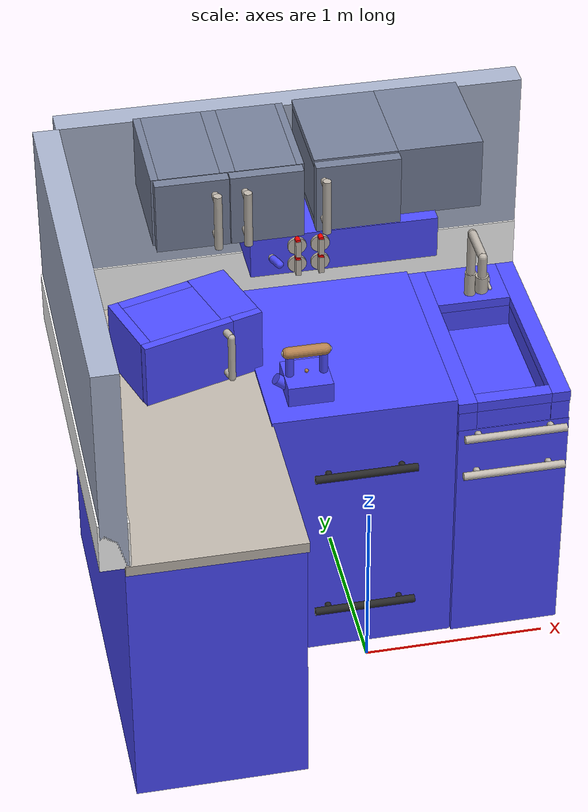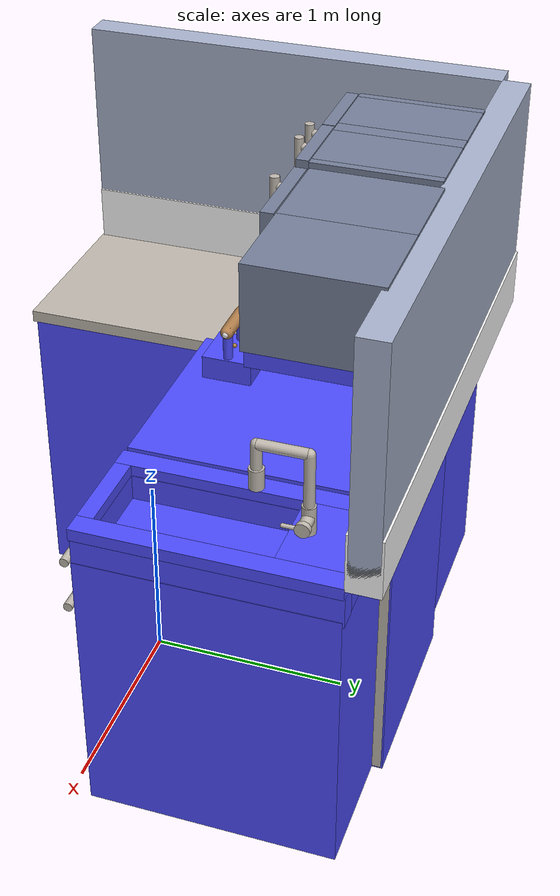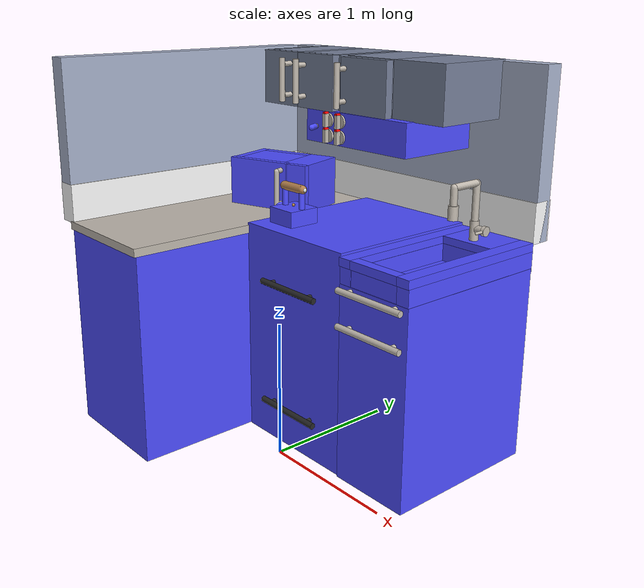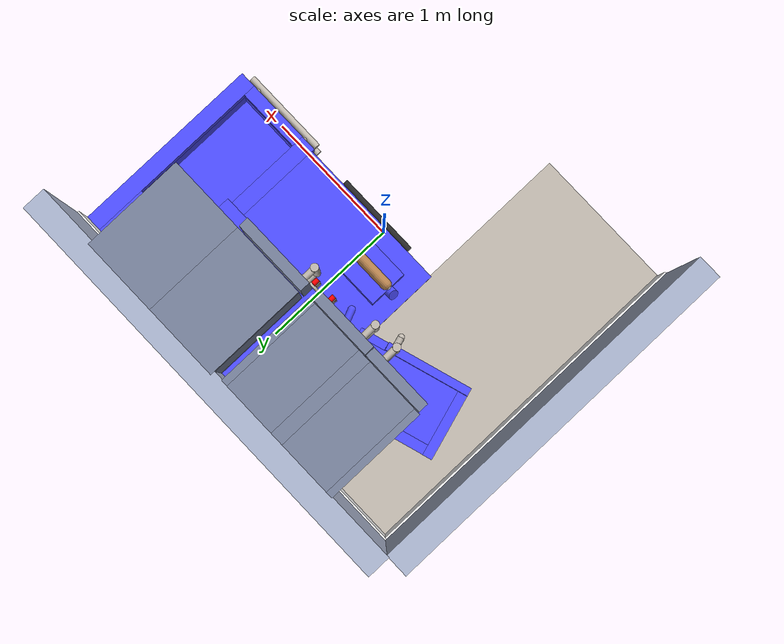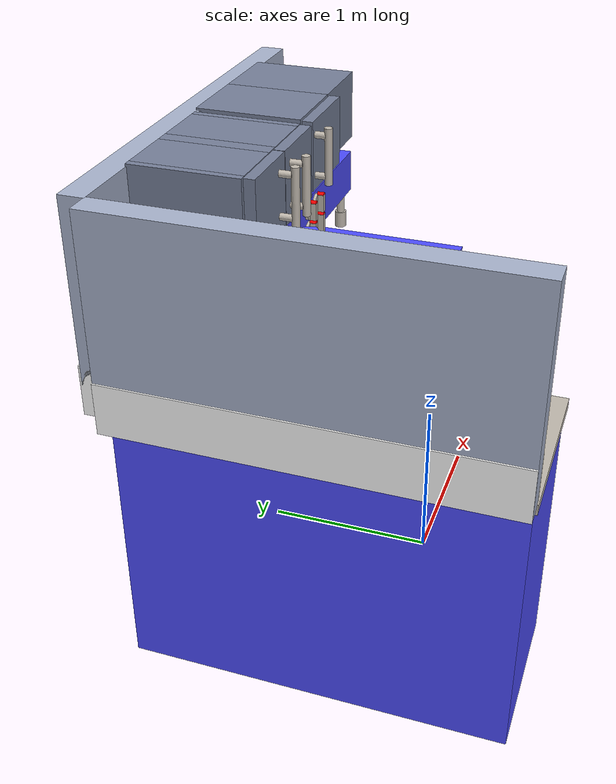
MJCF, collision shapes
<!--Copyright 2020 Google LLC-->

<!--Licensed under the Apache License, Version 2.0 (the "License");-->
<!--you may not use this file except in compliance with the License.-->
<!--You may obtain a copy of the License at-->

    <!--https://www.apache.org/licenses/LICENSE-2.0-->

<!--Unless required by applicable law or agreed to in writing, software-->
<!--distributed under the License is distributed on an "AS IS" BASIS,-->
<!--WITHOUT WARRANTIES OR CONDITIONS OF ANY KIND, either express or implied.-->
<!--See the License for the specific language governing permissions and-->
<!--limitations under the License.-->

<mujoco model="franka_kitchen">

    <size njmax='1000' nconmax='1000'/>

    <compiler inertiafromgeom="auto" inertiagrouprange="4 4" angle="radian"/>
    <asset>
        <mesh file="hood.stl" name="hood"/>
        <mesh file="lightswitch.stl" name="lightswitch"/>
        <mesh file="lightswitchbase.stl" name="lightswitchbase"/>
        <mesh file="knob.stl" name="knob"/>
        <mesh file="stoverim.stl" name="stoverim"/>
        <mesh file="burnerplate.stl" name="burnerplate"/>
        <mesh file="ovenhandle.stl" name="ovenhandle"/>
        <mesh file="oven.stl" name="oven"/>
        <mesh file="oventop.stl" name="oventop"/>
        <mesh file="ovenwindow.stl" name="ovenwindow"/>
        <texture name="T_oven_wood" type="cube" height="1" width="1" file="wood1.png"/>
        <texture name="T_oven_metal" type="cube" height="1" width="1" file="metal1.png"/>
        <material name="oven_wood" texture="T_oven_wood" texrepeat="3 3" reflectance="0.7" shininess=".4" texuniform="false"/>
        <material name="oven_metal" rgba="1 1 1 1" texture="T_oven_metal" texrepeat="3 3" reflectance="1" shininess="1" texuniform="false"/>
        <material name="oven_black" rgba=".15 .15 .15 1" reflectance=".2" shininess=".2" />
        <material name="oven_burner" rgba="2 0 0 1" reflectance=".2" shininess=".2" />
        <material name="oven_block" rgba=".1 .1 .1 1"/>
        <material name="oven_collision_blue" rgba="0.3 0.3 1.0 0.5" shininess="0" specular="0"/>
    </asset>
    <default>
        <default class="oven">
            <joint armature="0.001" damping="2" limited="true"/>
            <geom conaffinity="0" contype="0" group="1" material="oven_metal" type="mesh"/>
            <default class="ovenlight" >
                <light directional="false" castshadow="true" attenuation="0.03 0.03 0.03" cutoff="100" exponent="25" diffuse=".7 .65 .65" specular=".3 .3 .3"/>
            </default>
            <default class="oven_collision">
                <geom conaffinity="1" condim="3" contype="0" group="4" margin="0.001" material="oven_collision_blue" type="mesh"/>
            </default>
        </default>
    </default>
    <equality>
        <joint polycoef="0 174 0 0 0" joint1="knob_Joint_1" joint2="bottom_right_burner"/>
        <joint polycoef="0 174 0 0 0" joint1="knob_Joint_2" joint2="bottom_left_burner"/>
        <joint polycoef="0 174 0 0 0" joint1="knob_Joint_3" joint2="top_right_burner"/>
        <joint polycoef="0 174 0 0 0" joint1="knob_Joint_4" joint2="top_left_burner"/>
        <joint polycoef="0 14 0 0 0" joint1="light_switch" joint2="light_joint"/>
    </equality>

    <compiler inertiafromgeom="auto" inertiagrouprange="4 4" angle="radian"/>
    <asset>
        <mesh file="cabinetdrawer.stl" name="cabinetdrawer"/>
        <mesh file="cabinethandle.stl" name="cabinethandle"/>
        <mesh file="cabinetbase.stl" name="cabinetbase"/>
        <mesh file="countertop.stl" name="countertop"/>
        <mesh file="faucet.stl" name="faucet"/>
        <texture name="T_counter_metal" type="cube" height="1" width="1" file="metal1.png" />
        <texture name="T_counter_marble" type="cube" height="1" width="1" file="marble1.png" />
        <material name="counter_metal" rgba="1 1 1 1" texture="T_counter_metal" texrepeat="3 3" reflectance=".5" shininess="1" texuniform="false" />
        <material name="counter_marble"  texture="T_counter_marble" texrepeat="1 1" reflectance=".2" shininess="1" texuniform="false" />
        <material name="counter_black" rgba=".2 .2 .2 1" reflectance="1" shininess="1"  />
        <material name="counter_blue" rgba=".46 .5 .6 1" reflectance="1" shininess="1"  />
        <material name="counter_collision_blue" rgba="0.3 0.3 1.0 0.5" shininess="0" specular="0" />
    </asset>
    <default>
        <default class="counters">
            <joint damping="2" frictionloss="2" armature=".01" limited="true"/>
            <geom conaffinity="0" contype="0" group="1" material="counter_metal" type="mesh"/>
            <default class="counter_collision">
                <geom conaffinity="1" condim="3" contype="0" group="4" margin="0.001" material="counter_collision_blue"/>
            </default>
        </default>
    </default>

    <compiler inertiafromgeom="auto" inertiagrouprange="4 4" angle="radian"/>
    <asset>
        <texture name="T_wall_marble" type="cube" height="1" width="1" file="marble1.png"/>
        <texture name="T_wall_metal" type="cube" height="1" width="1" file="metal1.png"/>
        <material name="wall_white" rgba="1 1 1 1" reflectance="0" shininess="0"/>
        <material name="wall_blue" rgba=".66 .7 .8 1" reflectance="0" shininess="0"/>
        <material name="wall_collision_blue" rgba="0.3 0.3 1.0 0.5" shininess="0" specular="0"/>
    </asset>
    <default>
        <default class="backwall">
            <geom conaffinity="0" contype="0" group="1" material="wall_blue"/>
            <default class="wall_collision">
                <geom conaffinity="1" condim="3" contype="0" group="4" margin="0.001" material="wall_collision_blue"/>
            </default>
        </default>
    </default>

    <compiler inertiafromgeom="auto" inertiagrouprange="4 4" angle="radian"/>
    <asset>
        <texture name="T_slide_metal" type="cube" height="1" width="1" file="metal1.png"/>
        <material name="M_slide_metal" texture="T_slide_metal" texrepeat="3 3" reflectance="0.7" shininess=".4" texuniform="false"/>
        <material name="M_slide_blue" rgba=".46 .5 .6 1" reflectance="0.7" shininess=".4"/>
        <material name="slide_collision_blue" rgba="0.3 0.3 1.0 0.5" shininess="0" specular="0"/>
    </asset>
    <default>
        <default class="slidecabinet">
            <joint damping="2" frictionloss="2" armature=".01" limited="true"/>
            <geom conaffinity="0" contype="0" group="1" material="M_slide_blue" type="mesh"/>
            <default class="slide_collision">
                <geom conaffinity="1" condim="3" contype="0" group="4" margin="0.001" material="slide_collision_blue"/>
            </default>
        </default>
    </default>

    <compiler inertiafromgeom="auto" inertiagrouprange="4 4" angle="radian"/>
    <asset>
        <texture name="T_hinge_wood" type="cube" height="1" width="1" file="wood1.png"/>
        <texture name="T_hinge_metal" type="cube" height="1" width="1" file="metal1.png"/>
        <material name="M_hinge_wood" texture="T_hinge_wood" texrepeat="3 3" reflectance="0.7" shininess=".4" texuniform="false"/>
        <material name="M_hinge_metal" texture="T_hinge_metal" texrepeat="3 3" reflectance="0.7" shininess=".4" texuniform="false"/>
        <material name="M_hinge_blue" rgba=".46 .5 .6 1" reflectance="0.7" shininess=".4"/>
        <material name="hinge_collision_blue" rgba="0.3 0.3 1.0 0.5" shininess="0" specular="0"/>
    </asset>
    <default>
        <default class="hingecabinet">
            <joint damping="2" frictionloss="2" armature=".01" limited="true"/>
            <geom conaffinity="0" contype="0" group="1" material="M_hinge_wood" type="mesh"/>
            <default class="hinge_collision">
                <geom conaffinity="1" condim="3" contype="0" group="4" margin="0.001" material="hinge_collision_blue" solimp=".8 .9 .01" solref=".02 1"/>
            </default>
        </default>
    </default>

    <compiler inertiafromgeom="auto" inertiagrouprange="4 4" angle="radian"/>
    <asset>
        <mesh file="micro.stl" name="micro"/>
        <mesh file="microdoor.stl" name="microdoor"/>
        <mesh file="microbutton.stl" name="microbutton"/>
        <mesh file="microfeet.stl" name="microfeet"/>
        <mesh file="microhandle.stl" name="microhandle"/>
        <mesh file="microwindow.stl" name="microwindow"/>
        <texture name="T_micro_metal" type="cube" height="1" width="1" file="metal1.png"/>
        <material name="micro_metal" rgba="1 1 1 1" texture="T_micro_metal" texrepeat="3 3" reflectance="1" shininess="1" texuniform="false"/>
        <material name="micro_black" rgba=".2 .2 .2 1" reflectance="1" shininess="1"/>
        <material name="micro_window" rgba=".4 .4 .4 .25" reflectance="1" shininess="1"/>
        <material name="micro_collision_blue" rgba="0.3 0.3 1.0 0.5" shininess="0" specular="0"/>
    </asset>
    <default>
        <default class="microwave">
            <joint damping="2" frictionloss="2" armature=".01" limited="true"/>
            <geom conaffinity="0" contype="0" group="1" material="micro_black" type="mesh"/>
            <default class="micro_collision">
                <geom conaffinity="1" condim="3" contype="0" group="4" margin="0.001" material="micro_collision_blue" solimp=".8 .9 .01" solref=".02 1"/>
            </default>
        </default>
    </default>

    <compiler inertiafromgeom="auto" inertiagrouprange="4 4" angle="radian"/>
    <asset>
        <mesh file="kettle.stl" name="kettle"/>
        <mesh file="kettlehandle.stl" name="kettlehandle"/>
        <texture name="T_kettle_metal" type="cube" height="1" width="1" file="metal1.png" />
        <texture name="T_kettle_wood" type="cube" height="1" width="1" file="wood1.png" />
        <material name="kettle_wood" rgba="1 1 1 1" texture="T_kettle_wood" texrepeat="3 3" reflectance="1" shininess="1" texuniform="false" />
        <material name="kettle_metal" rgba="1 1 1 1" texture="T_kettle_metal" texrepeat="3 3" reflectance="1" shininess="1" texuniform="false" />
        <material name="kettle_white" rgba=".9 .9 .9 1" reflectance="1" shininess="1" />
        <material name="kettle_collision_blue" rgba="0.3 0.3 1.0 0.5" shininess="0" specular="0" />
    </asset>
    <default class="kettle">
        <joint damping="2" frictionloss="2" armature=".01" limited="true" />
        <geom conaffinity="0" contype="0" group="1" material="kettle_white" type="mesh"/>
        <default class="kettle_collision">
            <geom conaffinity="1" condim="4" contype="1" group="4" margin="0.001" material="kettle_collision_blue" solimp=".8 .9 .01" solref=".02 1" type="mesh"/>
        </default>
    </default>

    <visual>
    <global offwidth="2560" offheight="1920" />
    <quality shadowsize="4096" offsamples="8" />
    <map force="0.1" fogend="5" />
    </visual>

    <compiler inertiafromgeom='auto' inertiagrouprange='3 5' angle="radian" texturedir="./textures/" meshdir="./meshes/"/>
    <worldbody>

        <!-- Robot -->

        <body name='desk' pos='-0.1 0.75 0'>
            <body name="counters1" pos="0 0 0" >
                <body name="counters" childclass="counters">
                    <geom material="counter_blue" mesh="cabinetbase" type="mesh"/>
                    <geom material="counter_marble" mesh="countertop" type="mesh"/>
                    <geom material="counter_marble" pos="-0.855 -0.508 1.57" size="0.463 1.08 0.03" type="box"/>
                    <geom mesh="faucet" pos="0.904 -0.172 1.511" type="mesh"/>
                    <geom pos="0.9 0.085 1.83" size="0.035 0.05" type="cylinder"/>
                    <geom pos="0.9 0.085 1.92" size="0.025 0.08" type="capsule"/>
                    <geom euler="1.57 0 0" pos="0.9 0.2 2" size="0.025 0.11" type="capsule"/>
                    <geom pos="0.9 0.317 1.8" size="0.025 0.2" type="capsule"/>
                    <geom pos="0.9 0.317 1.67" size="0.032 0.07" type="cylinder"/>
                    <geom pos="0.947 0.318 1.68" euler="0 1.57 0" size="0.029 0.03" type="cylinder"/>
                    <geom pos="0.99 0.318 1.68" euler="0 1.57 0" size="0.035 0.013 " type="cylinder"/>
                    <geom euler="1.57 0 0" pos="0.99 0.26 1.68" size="0.01 0.03" type="capsule"/>
                    <geom euler="0 1.57 0" pos="0.909 -0.695 1.39" size="0.022 0.28" type="cylinder"/>
                    <geom euler="1.57 0 0" pos="0.71 -0.665 1.39" size="0.018 0.03" type="cylinder"/>
                    <geom euler="1.57 0 0" pos="1.108 -0.665 1.39" size="0.018 0.03" type="cylinder"/>
                    <geom euler="0 1.57 0" pos="0.909 -0.695 1.14" size="0.022 0.28" type="cylinder"/>
                    <geom euler="1.57 0 0" pos="0.71 -0.665 1.14" size="0.018 0.03" type="cylinder"/>
                    <geom euler="1.57 0 0" pos="1.108 -0.665 1.14" size="0.018 0.03" type="cylinder"/>
                    <geom class="counter_collision" euler="0 1.57 0" pos="0.909 -0.695 1.39" size="0.022 0.28" type="cylinder" mass=".1"/>
                    <geom class="counter_collision" euler="1.57 0 0" pos="0.71 -0.665 1.39" size="0.018 0.03" type="cylinder" mass=".02"/>
                    <geom class="counter_collision" euler="1.57 0 0" pos="1.108 -0.665 1.39" size="0.018 0.03" type="cylinder" mass=".02"/>
                    <geom class="counter_collision" euler="0 1.57 0" pos="0.909 -0.695 1.14" size="0.022 0.28" type="cylinder" mass=".1"/>
                    <geom class="counter_collision" euler="1.57 0 0" pos="0.71 -0.665 1.14" size="0.018 0.03" type="cylinder" mass=".02"/>
                    <geom class="counter_collision" euler="1.57 0 0" pos="1.108 -0.665 1.14" size="0.018 0.03" type="cylinder" mass=".02"/>
                    <geom class="counter_collision" pos="-0.86 -0.5 0.78" size="0.46 1.07 0.777" type="box" mass="5"/>
                    <geom class="counter_collision" pos="0.907 -0.045 0.71" size="0.304 0.606 0.71" type="box" mass="3"/>
                    <geom class="counter_collision" pos="-0.855 -0.508 1.57" size="0.463 1.08 0.03" type="box" mass=".5"/>
                    <geom class="counter_collision" pos="1.159 -0.045 1.57" size="0.051 0.611 0.03" type="box" mass=".2"/>
                    <geom class="counter_collision" pos="0.649 -0.045 1.57" size="0.051 0.611 0.03" type="box" mass=".2"/>
                    <geom class="counter_collision" pos="0.904 0.4 1.57" size="0.204 0.165 0.03" type="box" mass=".2"/>
                    <geom class="counter_collision" pos="0.904 -0.617 1.57" size="0.204 0.039 0.03" type="box" mass=".2"/>
                    <geom class="counter_collision" pos="1.158 -0.04 1.47" size="0.05 0.61 0.076" type="box" mass=".2"/>
                    <geom class="counter_collision" pos="0.652 -0.04 1.47" size="0.05 0.61 0.076" type="box" mass=".2"/>
                    <geom class="counter_collision" pos="0.904 0.401 1.47" size="0.204 0.166 0.076" type="box" mass=".2"/>
                    <geom class="counter_collision" pos="0.904 -0.611 1.47" size="0.206 0.034 0.076" type="box" mass=".2"/>
                    <geom class="counter_collision" pos="0.9 0.085 1.83" size="0.035 0.05" type="cylinder" mass=".02"/>
                    <geom class="counter_collision" pos="0.9 0.085 1.92" size="0.025 0.08" type="capsule" mass=".02"/>
                    <geom class="counter_collision" euler="1.57 0 0" pos="0.9 0.2 2" size="0.025 0.11" type="capsule" mass=".02"/>
                    <geom class="counter_collision" pos="0.9 0.317 1.8" size="0.025 0.2" type="capsule" mass=".02"/>
                    <geom class="counter_collision" pos="0.9 0.317 1.67" size="0.032 0.07" type="cylinder" mass=".02"/>
                    <geom class="counter_collision" pos="0.947 0.318 1.68" euler="0 1.57 0" size="0.029 0.03" type="cylinder" mass=".02"/>
                    <geom class="counter_collision" pos="0.99 0.318 1.68" euler="0 1.57 0" size="0.035 0.013 " type="cylinder" mass=".02"/>
                    <geom class="counter_collision" euler="1.57 0 0" pos="0.99 0.26 1.68" size="0.01 0.03" type="capsule" mass=".02"/>
                </body>
            </body>
            <body name="oven" pos="0 0 0" >
                <body name="ovenroot" childclass="oven" pos="0.115 -0.2921 0.9834">
                    <geom material="oven_black" mesh="burnerplate" pos="-0.24 -0.119 0.629" type="mesh"/>
                    <geom material="oven_black" mesh="burnerplate" pos="-0.237 0.322 0.629" type="mesh"/>
                    <geom material="oven_black" mesh="burnerplate" pos="0.204 0.322 0.629" type="mesh"/>
                    <geom material="oven_black" mesh="burnerplate" pos="0.206 -0.119 0.629" type="mesh"/>
                    <geom material="oven_black" euler="1.57 0 0" pos="-.215 -0.36 -0.682" size="0.018 0.03" type="cylinder"/>
                    <geom material="oven_black" euler="1.57 0 0" pos=".184 -0.36 -0.682" size="0.018 0.03" type="cylinder"/>
                    <geom material="oven_black" euler="0 1.57 0" pos="-0.015 -0.39 -0.682" size="0.022 0.28" type="cylinder"/>
                    <geom material="oven_black" euler="1.57 0 0" pos="-.215 -0.36 0.254" size="0.018 0.03" type="cylinder"/>
                    <geom material="oven_black" euler="1.57 0 0" pos=".184 -0.36 0.254" size="0.018 0.03" type="cylinder"/>
                    <geom material="oven_black" euler="0 1.57 0" pos="-0.015 -0.39 0.254" size="0.022 0.28" type="cylinder"/>
                    <geom material="oven_black" mesh="oventop" pos="-0.017 0.275 0.607" type="mesh"/>
                    <geom material="oven_black" mesh="ovenwindow" pos="0.9793 0.2921 -1.1877" type="mesh"/>
                    <geom material="oven_black" pos="-0.011 -.327 -.05" size="0.35 0.016 0.22" type="box"/>
                    <geom mesh="stoverim" pos="0.203 0.323 0.619" type="mesh"/>
                    <geom mesh="stoverim" pos="-0.24 -0.12 0.619" type="mesh"/>
                    <geom mesh="stoverim" pos="-0.237 0.323 0.619" type="mesh"/>
                    <geom mesh="stoverim" pos="0.207 -0.12 0.619" type="mesh"/>
                    <geom pos="-0.017 -.326 .455" size="0.5 0.016 0.12" type="box"/>
                    <geom pos="-0.017 -.326 -.795" size="0.5 0.016 0.185" type="box"/>
                    <geom pos="-0.017 -.326 -.14" size="0.5 0.016 0.465" type="box"/>
                    <geom pos="-0.017 0.295 -0.2" size="0.5 0.602 0.78" type="box"/>
                    <geom class="oven_collision" pos="-0.017 0.28 -0.175" size="0.5 0.625 0.81" type="box" mass="5"/>
                    <geom class="oven_collision" euler="1.57 0 0" pos="-.215 -0.36 -0.682" size="0.018 0.03" type="cylinder" mass=".2"/>
                    <geom class="oven_collision" euler="1.57 0 0" pos=".184 -0.36 -0.682" size="0.018 0.03" type="cylinder" mass=".2"/>
                    <geom class="oven_collision" euler="0 1.57 0" pos="-0.015 -0.39 -0.682" size="0.022 0.28" type="cylinder" mass=".2"/>
                    <geom class="oven_collision" euler="1.57 0 0" pos="-.215 -0.36 0.254" size="0.018 0.03" type="cylinder" mass=".2"/>
                    <geom class="oven_collision" euler="1.57 0 0" pos=".184 -0.36 0.254" size="0.018 0.03" type="cylinder" mass=".2"/>
                    <geom class="oven_collision" euler="0 1.57 0" pos="-0.015 -0.39 0.254" size="0.022 0.28" type="cylinder" mass=".2"/>
                    <body name="knob 1" euler="1.57 0 0" pos="-0.148 0.22 1.243">
                        <joint name="knob_Joint_1" axis="0 0 1" type="hinge" limited="true" range="-1.57 0"/>
                        <geom type="box" pos="0 0 .038" size=".014 .048 .018"/>
                        <geom type="cylinder" pos="0 0 .013" size=".05 .008"/>
                        <geom type="cylinder" pos="0 0.048 .037" size=".014 .018" rgba="1 0 0 1"/>
                        <geom class="oven_collision" type="box" pos="0 0 .038" size=".014 .048 .018" mass=".01"/>
                        <geom class="oven_collision" type="cylinder" pos="0 0 .013" size=".05 .008" mass=".01"/>
                        <site type="sphere" name="knob1_site" pos="0 0 .038" size=".01" group="3" rgba="1 1 0 1"/>
                    </body>
                    <body name="Burner 1" pos="0.206 -0.119 0.61">
                        <inertial pos="0 0 0" mass=".01" diaginertia="0.001 0.001 0.001"/>
                        <joint name="bottom_right_burner" axis="0 0 -1" type="slide" limited="true" range="-.009 0"/>
                        <geom material="oven_burner" size="0.1 0.01" type="cylinder"/>
                    </body>
                    <body name="knob 2" euler="1.57 0 0" pos="-0.271 0.22 1.243">
                        <joint name="knob_Joint_2" axis="0 0 1" type="hinge" limited="true" range="-1.57 0"/>
                        <geom type="box" pos="0 0 .038" size=".014 .048 .018"/>
                        <geom type="cylinder" pos="0 0 .013" size=".05 .008"/>
                        <geom type="cylinder" pos="0 0.048 .037" size=".014 .018" rgba="1 0 0 1"/>
                        <geom class="oven_collision" type="box" pos="0 0 .038" size=".014 .048 .018" mass=".01"/>
                        <geom class="oven_collision" type="cylinder" pos="0 0 .013" size=".05 .008" mass=".01"/>
                        <site type="sphere" name="knob2_site" pos="0 0 .038" size=".01" group="3" rgba="0 0 1 1"/>
                    </body>
                    <body name="Burner 2" pos="-0.24 -0.119 0.61">
                        <inertial pos="0 0 0" mass=".01" diaginertia="0.001 0.001 0.001"/>
                        <joint name="bottom_left_burner" axis="0 0 -1" type="slide" limited="true" stiffness="1" range="-.009 0"/>
                        <geom material="oven_burner" size="0.1 0.01" type="cylinder" group="1"/>
                    </body>
                    <body name="knob 3" euler="1.57 0 0" pos="-0.148 0.22 1.357">
                        <joint name="knob_Joint_3" axis="0 0 1" type="hinge" limited="true" range="-1.57 0"/>
                        <geom type="box" pos="0 0 .038" size=".014 .048 .018"/>
                        <geom type="cylinder" pos="0 0 .013" size=".05 .008"/>
                        <geom type="cylinder" pos="0 0.048 .037" size=".014 .018" rgba="1 0 0 1"/>
                        <geom class="oven_collision" type="box" pos="0 0 .038" size=".014 .048 .018" mass=".01"/>
                        <geom class="oven_collision" type="cylinder" pos="0 0 .013" size=".05 .008" mass=".01"/>
                        <site type="sphere" name="knob3_site" pos="0 0 .038" size=".01" group="3" rgba="0 1 0 1"/>
                    </body>
                    <body name="Burner 3" pos="0.204 0.322 0.61">
                        <inertial pos="0 0 0" mass=".01" diaginertia="0.001 0.001 0.001"/>
                        <joint name="top_right_burner" axis="0 0 -1" type="slide" limited="true" stiffness="1" range="-.009 0"/>
                        <geom material="oven_burner" size="0.1 0.01" type="cylinder" group="1"/>
                    </body>
                    <body name="knob 4" euler="1.57 0 0" pos="-0.271 0.22 1.357">
                        <joint name="knob_Joint_4" axis="0 0 1" type="hinge" limited="true" range="-1.57 0"/>
                        <geom type="box" pos="0 0 .038" size=".014 .048 .018"/>
                        <geom type="cylinder" pos="0 0 .013" size=".05 .008"/>
                        <geom type="cylinder" pos="0 0.048 .037" size=".014 .018" rgba="1 0 0 1"/>
                        <geom class="oven_collision" type="box" pos="0 0 .038" size=".014 .048 .018" mass=".01"/>
                        <geom class="oven_collision" type="cylinder" pos="0 0 .013" size=".05 .008" mass=".01"/>
                        <site type="sphere" name="knob4_site" pos="0 0 .038" size=".01" group="3" rgba="1 0 0 1"/>
                    </body>
                    <body name="Burner 4" pos="-0.237 0.322 0.61">
                        <inertial pos="0 0 0" mass=".01" diaginertia="0.001 0.001 0.001"/>
                        <joint name="top_left_burner" axis="0 0 -1" type="slide" limited="true" stiffness="1" range="-.009 0"/>
                        <geom material="oven_burner" size="0.1 0.01" type="cylinder" group="1"/>
                    </body>
                </body>
                <body name="hoodroot" pos="0.1 0.188 2.33" childclass="oven">
                    <geom material="oven_black" mesh="hood" pos="-0.1 -0.2896 -2.329" type="mesh"/>
                    <geom class="oven_collision" pos="0 0.073 -0.046" size="0.502 0.336 0.12" type="box" mass="2"/>
                    <body name="lightswitchbaseroot" pos="-0.4 -0.2473 -0.05" >
                        <geom mesh="lightswitchbase" pos="0 -0.0123 0" euler="-1.57 0 0" type="mesh"/>
                        <body name="lightswitchroot">
                            <inertial pos="-0.0046 0.35 0.0131" mass=".1" diaginertia="0.001 0.001 0.001"/>
                            <joint axis="0 0 1" limited="true" name="light_switch" frictionloss="1" range="-.7 0" type="hinge"/>
                            <geom pos="0.0252 -0.06 0" euler="-1.57 -.4 0" size="0.02 0.035" type="capsule"/>
                            <geom class="oven_collision" euler="-1.57 -.4 0" pos="0.0263 -0.065 0" size="0.021 0.03" type="capsule" mass=".01"/>
                            <site type="sphere" name="light_site" pos="0.0315 -0.075 0" size=".01" group="3" rgba="1 0 0 1"/>
                        </body>
                    </body>
                    <body name="lightblock_hinge" pos="-0.0044 -0.3 -0.1361">
                        <inertial pos="-0.0046 0.35 0.0131" mass=".01" diaginertia="0.001 0.001 0.001"/>
                        <joint axis="0 0 -1" type="slide" limited="true" name="light_joint" frictionloss="1" range="-.05 0"/>
                        <geom material="oven_block" pos="-0.008 0.4 -0.01" size="0.4 0.3 0.015" type="box"/>
                    </body>
                </body>
            </body>
            <body name="backwall" pos="0 0 0" >
                <body name="wallroot" childclass="backwall" pos="0.059 0.584 1.587">
                    <geom pos="-.11 0.06 .6" size="1.26 0.07 0.6" type="box"/>
                    <geom material="wall_white" pos="-0.11 0.06 0.145" size="1.26 0.08 0.145" type="box"/>
                    <geom class="wall_collision" pos="-.11 0.06 .6" size="1.26 0.07 0.6" type="box" mass=".2"/>
                    <geom class="wall_collision" pos="-0.11 0.06 0.145" size="1.26 0.08 0.145" type="box" mass=".2"/>
                </body>
                <body euler="0 0 1.57" name="wall2" childclass="backwall" pos="-1.305 -0.546 1.587">
                    <geom pos="0.044 .06 0.6" size="1.079 0.07 0.6" type="box"/>
                    <geom material="wall_white" pos="0.044 .06 0.145" size="1.079 0.08 0.145" type="box"/>
                    <geom class="wall_collision" pos="0.044 .06 0.6" size="1.079 0.07 0.6" type="box" mass=".2"/>
                    <geom class="wall_collision" pos="0.044 .06 0.145" size="1.079 0.08 0.145" type="box" mass=".2"/>
                </body>
            </body>
            <body name="slidecabinet" pos="0.4 0.3 2.6" >
                <body name="slide" childclass="slidecabinet">
                    <geom pos="-0.225 0 -0.18" size="0.223 0.3 0.02" type="box"/>
                    <geom pos="0.224 0 0" size="0.226 0.3 0.2" type="box"/>
                    <geom pos="-0.225 0 0.18" size="0.223 0.3 0.02" type="box"/>
                    <geom pos="-0.426 0 0" size="0.022 0.3 0.16" type="box"/>
                    <geom pos="-0.2 0.276 0.0" size="0.21 0.024 0.16" type="box"/>
                    <geom class="slide_collision" pos="-0.225 0 -0.18" size="0.223 0.3 0.02" type="box" mass=".2"/>
                    <geom class="slide_collision" pos="0.224 0 0" size="0.226 0.3 0.2" type="box" mass="1"/>
                    <geom class="slide_collision" pos="-0.225 0 0.18" size="0.223 0.3 0.02" type="box" mass=".2"/>
                    <geom class="slide_collision" pos="-0.426 0 0" size="0.022 0.3 0.16" type="box" mass=".2"/>
                    <geom class="slide_collision" pos="-0.2 0.276 0" size="0.2 0.024 0.16" type="box" mass=".2"/>
                    <body name="slidelink" pos="-0.225 -0.32 0">
                        <joint name="slide_cabinet" axis="1 0 0" type="slide" range="0 .44"/>
                        <geom material="M_slide_metal" euler="1.57 0 0" pos="-0.183 -0.06 -0.114" size="0.019 0.053 0.019" type="cylinder"/>
                        <geom material="M_slide_metal" euler="1.57 0 0" pos="-0.183 -0.06 0.114" size="0.019 0.053 0.019" type="cylinder"/>
                        <geom material="M_slide_metal" pos="-0.183 -0.123 0" size="0.022 0.159" type="cylinder"/>
                        <geom pos="0 -.02 0" size="0.225 0.03 0.195" type="box"/>
                        <geom class="slide_collision" pos="0 -.02 0" size="0.225 0.03 0.195" type="box" mass=".2"/>
                        <geom class="slide_collision" euler="1.57 0 0" pos="-0.183 -0.06 -0.114" size="0.019 0.053 0.019" type="cylinder" mass=".02"/>
                        <geom class="slide_collision" euler="1.57 0 0" pos="-0.183 -0.06 0.114" size="0.019 0.053 0.019" type="cylinder" mass=".02"/>
                        <geom class="slide_collision" pos="-0.183 -0.123 0" size="0.022 0.159" type="cylinder" mass=".1"/>
                        <site type="sphere" name="slide_site" pos="-0.183 -0.123 0" size=".01" group="3"/>
                    </body>
                </body>
            </body>
            <body name="hingecabinet" pos="-0.504 0.28 2.6" >
                <body name="hingecab" childclass="hingecabinet">
                    <geom material="M_hinge_blue" size="0.04 0.3 0.2" type="box"/>
                    <geom material="M_hinge_blue" pos="0.38 0 0" size="0.02 0.3 0.2" type="box"/>
                    <geom material="M_hinge_blue" pos="-0.38 0 0" size="0.02 0.3 0.2" type="box"/>
                    <geom material="M_hinge_blue" pos="-0.2 0 0.18" size="0.16 0.3 0.02" type="box"/>
                    <geom material="M_hinge_blue" pos="-0.2 0 -0.18" size="0.16 0.3 0.02" type="box"/>
                    <geom material="M_hinge_blue" pos="0.2 0 -0.18" size="0.16 0.3 0.02" type="box"/>
                    <geom material="M_hinge_blue" pos="0.2 0 0.18" size="0.16 0.3 0.02" type="box"/>
                    <geom material="M_hinge_blue" pos="-0.2 0.28 0" size="0.16 0.02 0.16" type="box"/>
                    <geom material="M_hinge_blue" pos="0.2 0.28 0" size="0.16 0.02 0.16" type="box"/>
                    <geom class="hinge_collision" size="0.04 0.3 0.2" type="box" mass=".3"/>
                    <geom class="hinge_collision" pos="0.38 0 0" size="0.02 0.3 0.2" type="box" mass=".2"/>
                    <geom class="hinge_collision" pos="-0.38 0 0" size="0.02 0.3 0.2" type="box" mass=".2"/>
                    <geom class="hinge_collision" pos="-0.2 0 0.18" size="0.16 0.3 0.02" type="box" mass=".2"/>
                    <geom class="hinge_collision" pos="-0.2 0 -0.18" size="0.16 0.3 0.02" type="box" mass=".2"/>
                    <geom class="hinge_collision" pos="0.2 0 -0.18" size="0.16 0.3 0.02" type="box" mass=".2"/>
                    <geom class="hinge_collision" pos="0.2 0 0.18" size="0.16 0.3 0.02" type="box" mass=".2"/>
                    <geom class="hinge_collision" pos="-0.2 0.28 0" size="0.16 0.02 0.16" type="box" mass=".2"/>
                    <geom class="hinge_collision" pos="0.2 0.28 0" size="0.16 0.02 0.16" type="box" mass=".2"/>
                    <body name="hingeleftdoor" pos="-0.38 -0.32 0">
                        <joint axis="0 0 1" name="left_hinge_cabinet" range="-1.57 0" type="hinge"/>
                        <geom material="M_hinge_metal" pos="0.302 -0.128 0" size="0.022 0.16" type="cylinder"/>
                        <geom material="M_hinge_metal" pos="0.302 -0.061 0.114" euler="1.57 0 0" size="0.019 0.053 0.02" type="cylinder"/>
                        <geom material="M_hinge_metal" pos="0.302 -0.061 -0.114" euler="1.57 0 0" size="0.019 0.053 0.02" type="cylinder"/>
                        <geom material="M_hinge_blue" pos="0.184 -.015 0" size="0.193 0.03 0.2" type="box"/>
                        <geom class="hinge_collision" pos="0.184 -.015 0" size="0.193 0.03 0.2" type="box" mass=".2"/>
                        <geom class="hinge_collision" pos="0.302 -0.128 0" size="0.022 0.16" type="cylinder" mass=".1"/>
                        <geom class="hinge_collision" pos="0.302 -0.061 0.114" euler="1.57 0 0" size="0.019 0.053 0.02" type="cylinder" mass=".02"/>
                        <geom class="hinge_collision" pos="0.302 -0.061 -0.114" euler="1.57 0 0" size="0.019 0.053 0.02" type="cylinder" mass=".02"/>
                        <site type="sphere" name="hinge_site1" pos="0.302 -0.128 0" size=".01" group="3" rgba="1 0 0 1"/>
                    </body>
                    <body name="hingerightdoor" pos="0.38 -0.32 0">
                        <joint axis="0 0 1" name="right_hinge_cabinet" range="0 1.57" type="hinge"/>
                        <geom material="M_hinge_blue" pos="-0.185 -.015 0" size="0.193 0.03 0.2" type="box"/>
                        <geom material="M_hinge_metal" pos="-0.302 -0.128 0" size="0.022 0.16" type="cylinder"/>
                        <geom material="M_hinge_metal" pos="-0.302 -0.061 -0.114" euler="1.57 0 0" size="0.019 0.053 0.02" type="cylinder"/>
                        <geom material="M_hinge_metal" pos="-0.302 -0.061 0.114" euler="1.57 0 0" size="0.019 0.053 0.02" type="cylinder"/>
                        <geom class="hinge_collision" pos="-0.302 -0.128 0" size="0.022 0.16" type="cylinder" mass=".1"/>
                        <geom class="hinge_collision" pos="-0.302 -0.061 -0.114" euler="1.57 0 0" size="0.019 0.053 0.02" type="cylinder" mass=".02"/>
                        <geom class="hinge_collision" pos="-0.302 -0.061 0.114" euler="1.57 0 0" size="0.019 0.053 0.02" type="cylinder" mass=".02"/>
                        <geom class="hinge_collision" pos="-0.185 -.015 0" size="0.193 0.03 0.2" type="box" mass=".2"/>
                        <site type="sphere" name="hinge_site2" pos="-0.302 -0.128 0" size=".01" group="3" rgba="0 1 0 1"/>
                    </body>
                </body>
            </body>
            <body name="microwave" pos="-0.750 -0.025 1.6" euler="0 0 0.3">
                <body name="microroot" childclass="microwave">
                    <geom mesh="micro" type="mesh"/>
                    <geom material="micro_metal" mesh="microbutton" type="mesh"/>
                    <geom material="micro_metal" mesh="microfeet" type="mesh"/>
                    <geom class="micro_collision" pos="-0.316 0.023 0.187" size="0.029 0.199 0.187" type="box" mass=".5"/>
                    <geom class="micro_collision" pos="0.236 0.023 0.187" size="0.109 0.199 0.187" type="box" mass=".5"/>
                    <geom class="micro_collision" pos="-0.081 0.191 0.187" size="0.207 0.03 0.187" type="box" mass=".5"/>
                    <geom class="micro_collision" pos="-0.08 -0.007 0.355" size="0.207 0.169 0.019" type="box" mass=".5"/>
                    <geom class="micro_collision" pos="-0.08 -0.008 0.024" size="0.207 0.168 0.024" type="box" mass=".5"/>
                    <geom class="micro_collision" pos="0.26 -0.197 0.187" size="0.085 0.024 0.187" type="box" mass=".5"/>
                    <body name="microdoorroot" pos="-0.345 -0.176 0.192">
                        <joint axis="0 0 1" limited="true" name="microwave" range="-2.094 0" type="hinge"/>
                        <geom mesh="microdoor" pos="0.345 0.176 -0.192" type="mesh"/>
                        <geom material="micro_window" mesh="microwindow" pos="0.345 0.176 -0.192" type="mesh"/>
                        <geom material="micro_metal" pos="0.475 -0.108 0" size="0.02 0.13" type="capsule"/>
                        <geom material="micro_metal" euler="1.57 0 0" pos="0.475 -0.075 .13" size="0.02 0.03" type="capsule"/>
                        <geom material="micro_metal" euler="1.57 0 0" pos="0.475 -0.075 -.13" size="0.02 0.03" type="capsule"/>
                        <geom class="micro_collision" pos="0.475 -0.108 0" size="0.02 0.13" type="capsule" mass="0.020"/>
                        <geom class="micro_collision" euler="1.57 0 0" pos="0.475 -0.075 .13" size="0.02 0.03" type="capsule" mass="0.020"/>
                        <geom class="micro_collision" euler="1.57 0 0" pos="0.475 -0.075 -.13" size="0.02 0.03" type="capsule" mass="0.020"/>
                        <geom class="micro_collision" pos="0.259 -0.026 0" size="0.259 0.024 0.185" type="box" mass="0.20"/>
                        <site type="sphere" name="microhandle_site" pos="0.475 -0.108 0" size=".01" group="3" rgba="1 1 0 1"/>
                    </body>
                </body>
            </body>
        </body>
        <body name="kettle" pos="-0.269 0.35 1.626">
            <body name="kettleroot" childclass="kettle">
                <geom mesh="kettle" type="mesh"/>
                <geom material="kettle_wood" euler="0 1.57 0" pos="0 0 0.259" size="0.032 0.1" type="capsule"/>
                <geom material="kettle_wood" euler="0 1.57 0" pos="0 0 0.13" size="0.011" type="sphere"/>
                <geom euler="0 1.57 0" pos="0 0 0.259" size="0.02 0.115" type="capsule"/>
                <geom pos="0.092 0 0.186" size="0.02 0.07" type="capsule"/>
                <geom pos="-0.092 0 0.185" size="0.02 0.07" type="capsule"/>
                <geom material="kettle_wood" pos="-0.092 0 0.22" size="0.022 0.015" type="capsule"/>
                <geom material="kettle_wood" pos="0.092 0 0.22" size="0.022 0.015" type="capsule"/>
                <geom class="kettle_collision" euler="0 1.57 0" pos="0 0 0.259" size="0.032 0.1" type="capsule" mass='.02'/>
                <geom class="kettle_collision" pos="0.092 0 0.18" size="0.023 0.06" type="capsule" mass='.02'/>
                <geom class="kettle_collision" pos="-0.092 0 0.18" size="0.023 0.06" type="capsule" mass='.02'/>
                <geom class="kettle_collision" euler="0 2.25 0" pos="-0.126 0 0.07" size="0.031 0.05" type="cylinder" mass='.02'/>
                <geom class="kettle_collision" pos="0 0 0.058" size="0.122 0.122 0.058" type="box" mass='.8'/>
                <site type="sphere" name="kettle_site" pos="0 0 0.259" size=".01" group="3" rgba="1 0 0 1"/>
            </body>
        </body>
    </worldbody>

    <keyframe>
        <key name="home" ctrl="0.16 -1.76 1.84 -2.51 0.36 0.79 1.55 255"/>
    </keyframe>

</mujoco>
